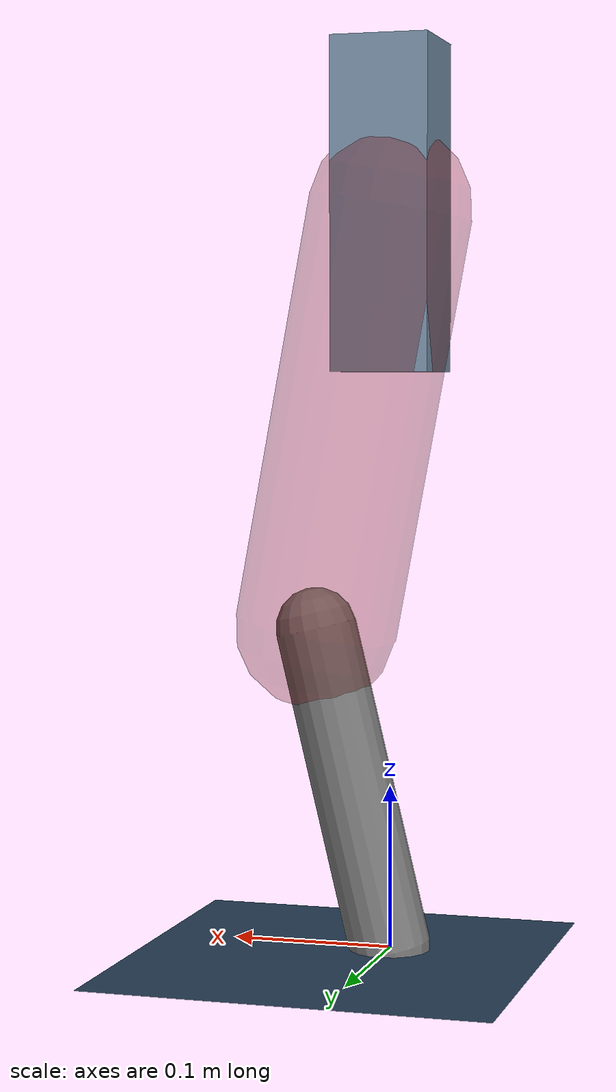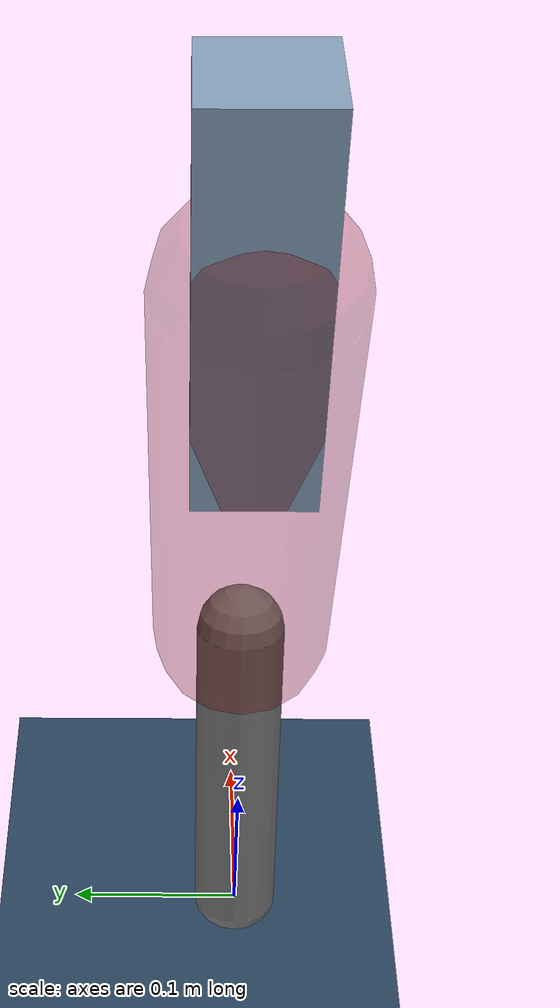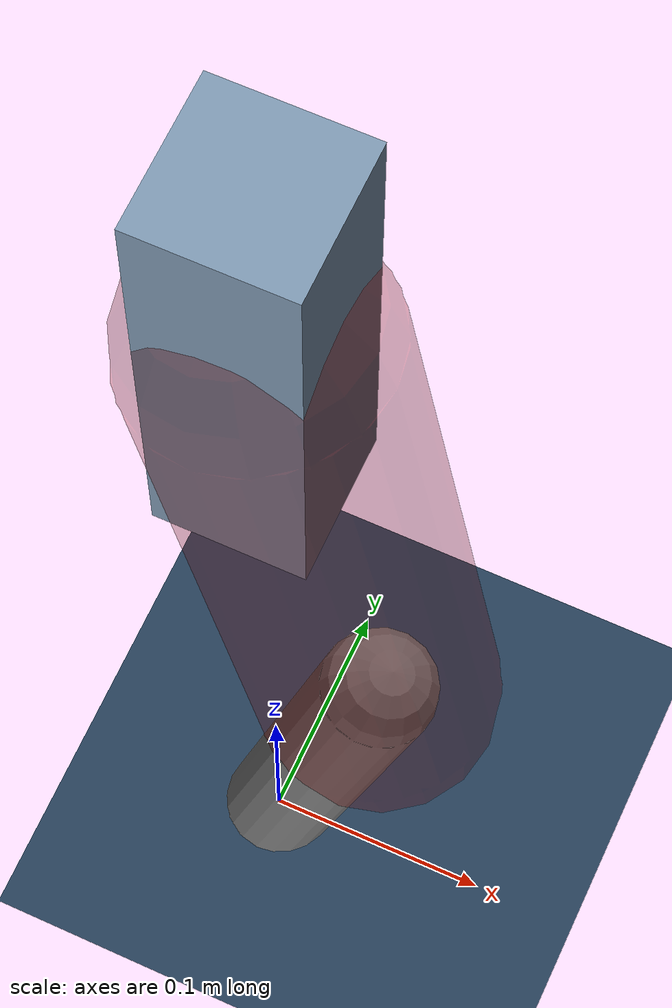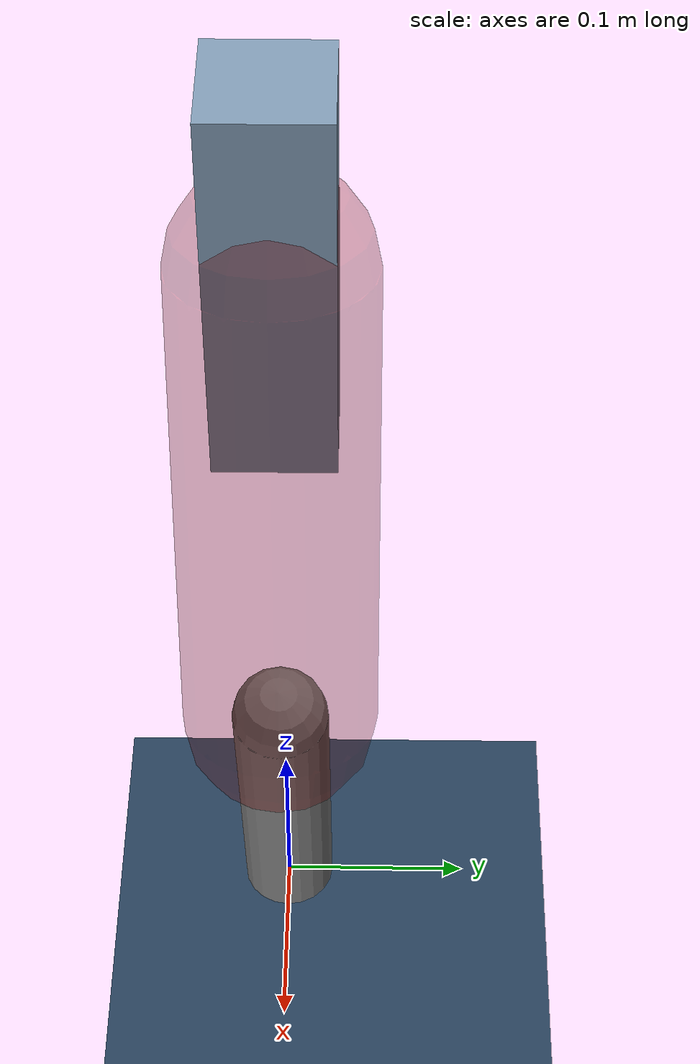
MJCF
<mujoco model="Hopper2D">
	<compiler inertiafromgeom="true" angle="radian" />
	<option timestep="0.001" integrator="implicit" cone="elliptic" solver="Newton" tolerance="1e-10" />

	<default>
		<geom contype="1" conaffinity="1" condim="3" friction="2 0.005 0.0001" solref="0.005 1" />
		<joint limited="true" damping="0.1" />
	</default>

	<asset>
		<texture name="skybox" type="skybox" builtin="gradient" rgb1=".4 .6 .8" rgb2="0 0 0" width="800" height="800" />
		<texture name="grid" type="2d" builtin="checker" rgb1=".1 .2 .3" rgb2=".2 .3 .4" width="300" height="300" mark="edge" markrgb=".2 .3 .4" />
		<material name="ground" texture="grid" texrepeat="1 1" texuniform="true" reflectance="0.1" />
		<material name="leg" rgba="0.5 0.6 0.7 1" />
	</asset>

	<worldbody>

		<geom name="floor" type="plane" size="5 5 0.25" material="ground" />

		<light directional="false" diffuse="0.8 0.8 0.8" specular="0.3 0.3 0.3" pos="0 0 2" dir="0 0 -1" />
		<light mode="targetbodycom" target="base" directional="false" diffuse="0.8 0.8 0.8" specular="0.3 0.3 0.3" pos="0 0 2" dir="0 0 -1" />

		<camera name="fixed" pos="0 -2 1" xyaxes="1 0 0 0 0 1" />
		<camera name="tracking" mode="trackcom" pos="0 -3 1" />

		<body name="root" pos="0 0 0.4538447599320763">
			<joint name="slide_x" type="slide" axis="1 0 0" range="-100 100" />
			<joint name="slide_z" type="slide" axis="0 0 1" range="0 10" />

			<body name="base" pos="0 0 0">
				<geom name="torso" type="box" size="0.03 0.03 0.1" mass="2.315" material="leg" />

				<body name="link1" pos="0 0 0" euler="0 1.3883597310346905 0">
					<joint type="hinge" axis="0 -1 0" pos="0 0 0" name="hinge1" limited="true" range="-3.14 3.14" stiffness="0" damping="0.1" />
					<geom name="thigh" type="capsule" fromto="0 0 0 0.2617220470219007 0 0" size="0.05" rgba="0.5 0 0 0.3" mass="0.8868773222569418" />

					<body name="link2" pos="0.2617220470219007 0 0" euler="0 0.4195758464413718 0">
						<joint type="hinge" axis="0 -1 0" pos="0 0 0" name="hinge2" limited="true" range="-3.14 3.14" stiffness="0" damping="0.1" />
						<geom name="shank" type="capsule" fromto="0 0 0 0.20212271291017558 0 0" size="0.025" mass="0.4026981703281405" />

					</body>
				</body>
			</body>
		</body>
	</worldbody>

	<actuator>
		<motor name="torque1" joint="hinge1" ctrlrange="-63.03447207594366 63.03447207594366" ctrllimited="true" gear="1" />
		<motor name="torque2" joint="hinge2" ctrlrange="-96.3765544217157 96.3765544217157" ctrllimited="true" gear="1" />
	</actuator>
</mujoco>
